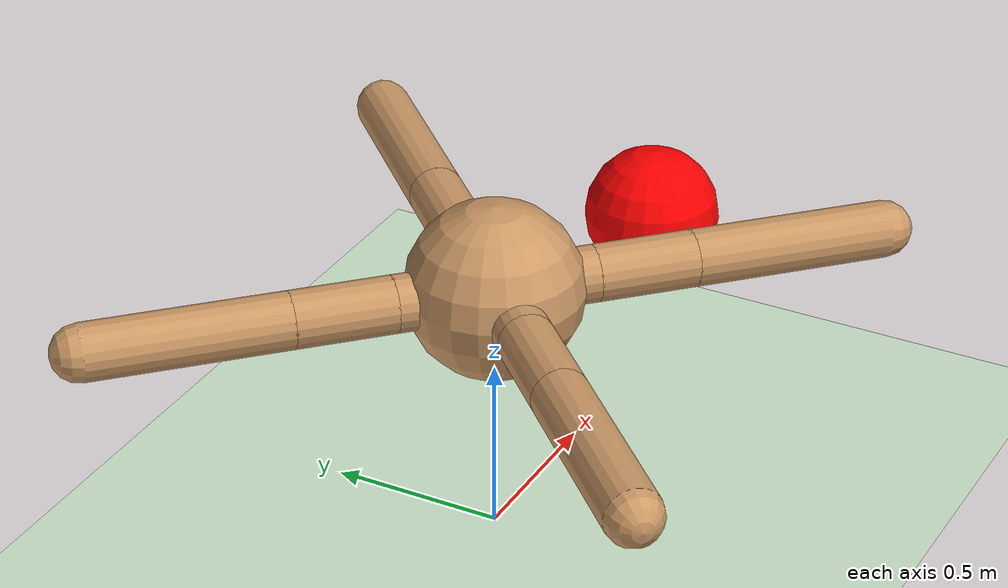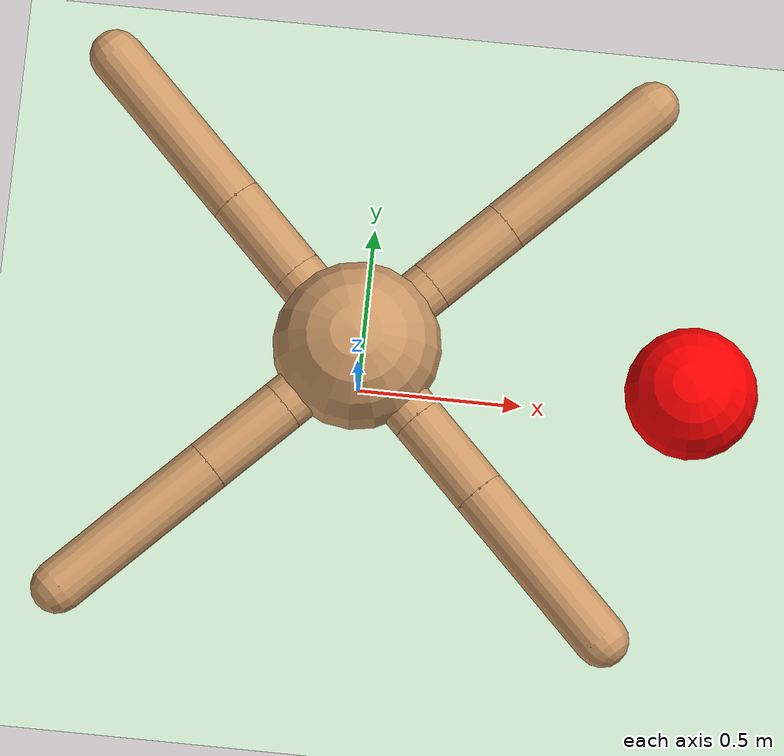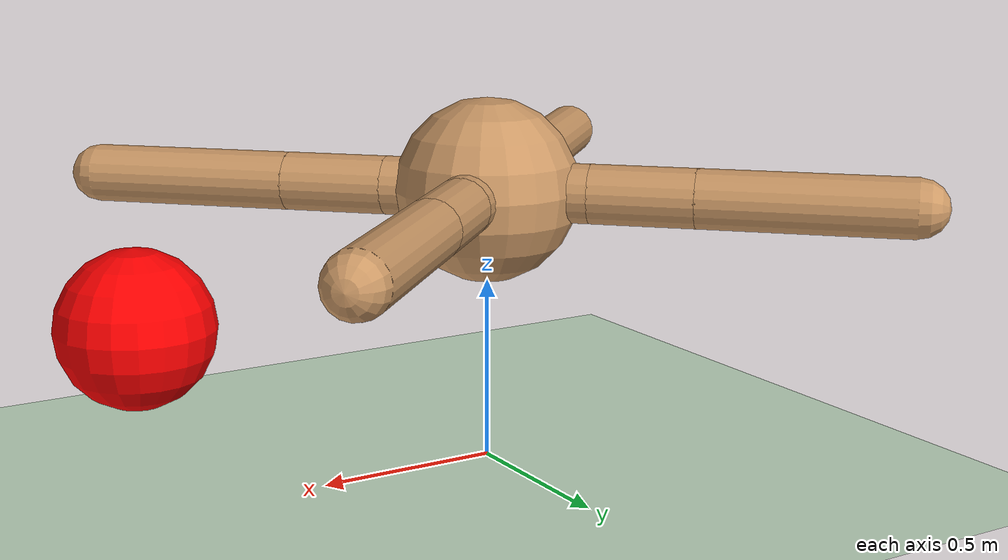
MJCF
<mujoco model="ant">
  <compiler angle="degree" coordinate="local" inertiafromgeom="true"/>
  <option integrator="RK4" timestep="0.01"/>
  <custom>
    <numeric data="0.0 0.0 0.55 1.0 0.0 0.0 0.0 0.0 1.0 0.0 -1.0 0.0 -1.0 0.0 1.0" name="init_qpos"/>
  </custom>
  <default>
    <joint armature="1" damping="1" limited="true"/>
    <geom conaffinity="0" condim="3" density="5.0" friction="1 0.5 0.5" margin="0.01" rgba="0.8 0.6 0.4 1"/>
  </default>
  <asset>
    <texture builtin="gradient" height="100" rgb1="1 1 1" rgb2="0 0 0" type="skybox" width="100"/>
    <texture builtin="flat" height="1278" mark="cross" markrgb="1 1 1" name="texgeom" random="0.01" rgb1="0.8 0.6 0.4" rgb2="0.8 0.6 0.4" type="cube" width="127"/>
    <texture builtin="checker" height="100" name="texplane" rgb1="0 0 0" rgb2="0.8 0.8 0.8" type="2d" width="100"/>
    <material name="MatPlane" reflectance="0.5" shininess="1" specular="1" texrepeat="60 60" texture="texplane"/>
    <material name="geom" texture="texgeom" texuniform="true"/>
  </asset>

    <worldbody>
    <light cutoff="100" diffuse="1 1 1" dir="-0 0 -1.3" directional="true" exponent="1" pos="0 0 1.3" specular=".1 .1 .1"/>
    <geom conaffinity="1" condim="3" material="MatPlane" name="floor" pos="0 0 0" rgba="0.8 0.9 0.8 1" size="40 40 40" type="plane"/>
    <body name="torso" pos="0 0 0.75">
      <camera name="track" mode="trackcom" pos="0 -3 0.3" xyaxes="1 0 0 0 0 1"/>
      <geom name="torso_geom" pos="0 0 0" size="0.25" type="sphere"/>
      <joint armature="0" damping="0" limited="false" margin="0.01" name="root" pos="0 0 0" type="free"/>
      <body name="front_left_leg" pos="0 0 0">
        <geom fromto="0.0 0.0 0.0 0.2 0.2 0.0" name="aux_1_geom" size="0.08" type="capsule"/>
        <body name="aux_1" pos="0.2 0.2 0">
          <joint axis="0 0 1" name="hip_1" pos="0.0 0.0 0.0" range="-30 30" type="hinge"/>
          <geom fromto="0.0 0.0 0.0 0.2 0.2 0.0" name="left_leg_geom" size="0.08" type="capsule"/>
          <body pos="0.2 0.2 0">
            <joint axis="-1 1 0" name="ankle_1" pos="0.0 0.0 0.0" range="30 70" type="hinge"/>
            <geom fromto="0.0 0.0 0.0 0.4 0.4 0.0" name="left_ankle_geom" size="0.08" type="capsule"/>
          </body>
        </body>
      </body>
      <body name="front_right_leg" pos="0 0 0">
        <geom fromto="0.0 0.0 0.0 -0.2 0.2 0.0" name="aux_2_geom" size="0.08" type="capsule"/>
        <body name="aux_2" pos="-0.2 0.2 0">
          <joint axis="0 0 1" name="hip_2" pos="0.0 0.0 0.0" range="-30 30" type="hinge"/>
          <geom fromto="0.0 0.0 0.0 -0.2 0.2 0.0" name="right_leg_geom" size="0.08" type="capsule"/>
          <body pos="-0.2 0.2 0">
            <joint axis="1 1 0" name="ankle_2" pos="0.0 0.0 0.0" range="-70 -30" type="hinge"/>
            <geom fromto="0.0 0.0 0.0 -0.4 0.4 0.0" name="right_ankle_geom" size="0.08" type="capsule"/>
          </body>
        </body>
      </body>
      <body name="back_leg" pos="0 0 0">
        <geom fromto="0.0 0.0 0.0 -0.2 -0.2 0.0" name="aux_3_geom" size="0.08" type="capsule"/>
        <body name="aux_3" pos="-0.2 -0.2 0">
          <joint axis="0 0 1" name="hip_3" pos="0.0 0.0 0.0" range="-30 30" type="hinge"/>
          <geom fromto="0.0 0.0 0.0 -0.2 -0.2 0.0" name="back_leg_geom" size="0.08" type="capsule"/>
          <body pos="-0.2 -0.2 0">
            <joint axis="-1 1 0" name="ankle_3" pos="0.0 0.0 0.0" range="-70 -30" type="hinge"/>
            <geom fromto="0.0 0.0 0.0 -0.4 -0.4 0.0" name="third_ankle_geom" size="0.08" type="capsule"/>
          </body>
        </body>
      </body>
      <body name="right_back_leg" pos="0 0 0">
        <geom fromto="0.0 0.0 0.0 0.2 -0.2 0.0" name="aux_4_geom" size="0.08" type="capsule"/>
        <body name="aux_4" pos="0.2 -0.2 0">
          <joint axis="0 0 1" name="hip_4" pos="0.0 0.0 0.0" range="-30 30" type="hinge"/>
          <geom fromto="0.0 0.0 0.0 0.2 -0.2 0.0" name="rightback_leg_geom" size="0.08" type="capsule"/>
          <body pos="0.2 -0.2 0">
            <joint axis="1 1 0" name="ankle_4" pos="0.0 0.0 0.0" range="30 70" type="hinge"/>
            <geom fromto="0.0 0.0 0.0 0.4 -0.4 0.0" name="fourth_ankle_geom" size="0.08" type="capsule"/>
          </body>
        </body>
      </body>
    </body>

    <site name="target0" pos="1 0 0.5" size="0.2 0.2 0.2" rgba="1 0 0 1" type="sphere"></site>
     <site name="target1" pos="1 0 0.5" size="0.2 0.2 0.2" rgba="1 0 0 1" type="sphere"></site>
    <site name="target2" pos="1 0 0.5" size="0.2 0.2 0.2" rgba="1 0 0 1" type="sphere"></site>
    <site name="target3" pos="1 0 0.5" size="0.2 0.2 0.2" rgba="1 0 0 1" type="sphere"></site>
    <site name="target4" pos="1 0 0.5" size="0.2 0.2 0.2" rgba="1 0 0 1" type="sphere"></site>
    <site name="target5" pos="1 0 0.5" size="0.2 0.2 0.2" rgba="1 0 0 1" type="sphere"></site>
    <site name="target6" pos="1 0 0.5" size="0.2 0.2 0.2" rgba="1 0 0 1" type="sphere"></site>
     <site name="target7" pos="1 0 0.5" size="0.2 0.2 0.2" rgba="1 0 0 1" type="sphere"></site>
    <site name="target8" pos="1 0 0.5" size="0.2 0.2 0.2" rgba="1 0 0 1" type="sphere"></site>
    <site name="target9" pos="1 0 0.5" size="0.2 0.2 0.2"  rgba="1 0 0 1" type="sphere"></site>

        <site name="target10" pos="1 0 0.5" size="0.2 0.2 0.2" rgba="1 0 0 1" type="sphere"></site>
     <site name="target11" pos="1 0 0.5" size="0.2 0.2 0.2" rgba="1 0 0 1" type="sphere"></site>
    <site name="target12" pos="1 0 0.5" size="0.2 0.2 0.2" rgba="1 0 0 1" type="sphere"></site>
    <site name="target13" pos="1 0 0.5" size="0.2 0.2 0.2" rgba="1 0 0 1" type="sphere"></site>
    <site name="target14" pos="1 0 0.5" size="0.2 0.2 0.2" rgba="1 0 0 1" type="sphere"></site>
    <site name="target15" pos="1 0 0.5" size="0.2 0.2 0.2" rgba="1 0 0 1" type="sphere"></site>
    <site name="target16" pos="1 0 0.5" size="0.2 0.2 0.2" rgba="1 0 0 1" type="sphere"></site>
     <site name="target17" pos="1 0 0.5" size="0.2 0.2 0.2" rgba="1 0 0 1" type="sphere"></site>
    <site name="target18" pos="1 0 0.5" size="0.2 0.2 0.2" rgba="1 0 0 1" type="sphere"></site>
    <site name="target19" pos="1 0 0.5" size="0.2 0.2 0.2"  rgba="1 0 0 1" type="sphere"></site>

  </worldbody>
  <actuator>
    <motor ctrllimited="true" ctrlrange="-1.0 1.0" joint="hip_4" gear="150"/>
    <motor ctrllimited="true" ctrlrange="-1.0 1.0" joint="ankle_4" gear="150"/>
    <motor ctrllimited="true" ctrlrange="-1.0 1.0" joint="hip_1" gear="150"/>
    <motor ctrllimited="true" ctrlrange="-1.0 1.0" joint="ankle_1" gear="150"/>
    <motor ctrllimited="true" ctrlrange="-1.0 1.0" joint="hip_2" gear="150"/>
    <motor ctrllimited="true" ctrlrange="-1.0 1.0" joint="ankle_2" gear="150"/>
    <motor ctrllimited="true" ctrlrange="-1.0 1.0" joint="hip_3" gear="150"/>
    <motor ctrllimited="true" ctrlrange="-1.0 1.0" joint="ankle_3" gear="150"/>
  </actuator>
</mujoco>
